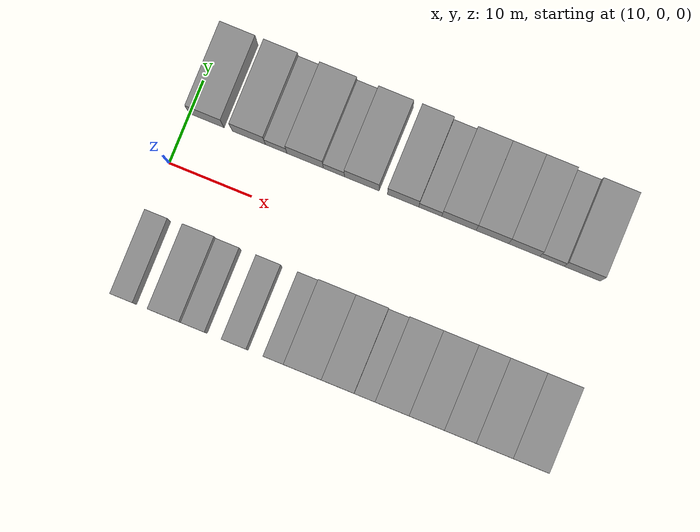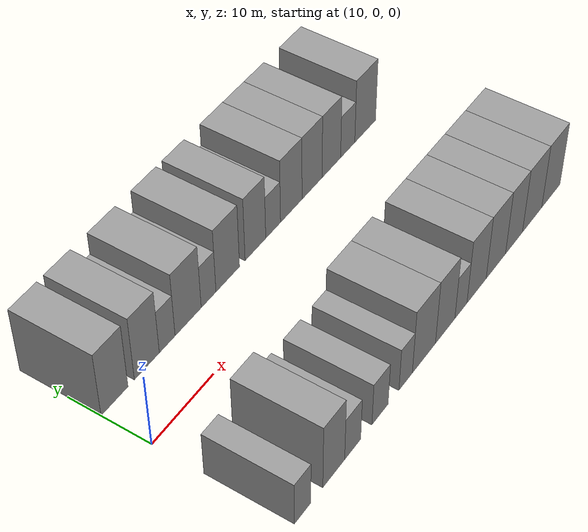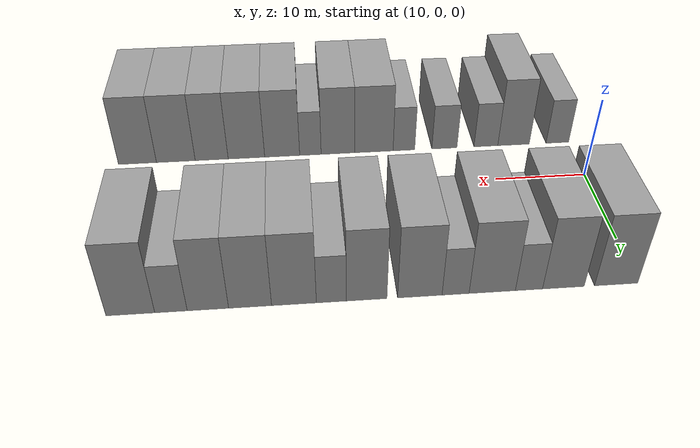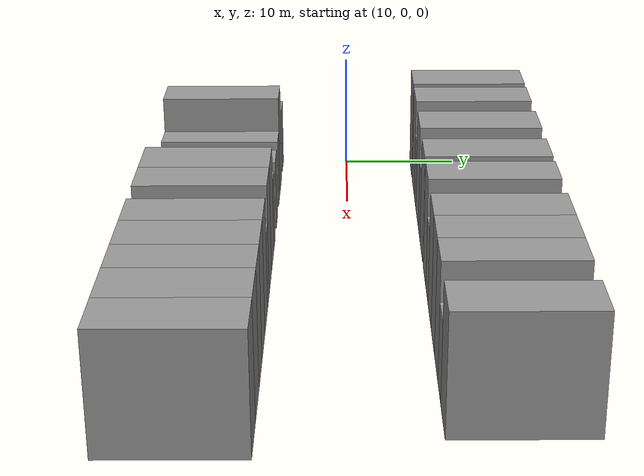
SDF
<sdf version="1.6">
 <world name="default">
  <model name="building_1">
   <static>1</static>
   <pose>12.0894 11.0000 0 0.000000 0.000000 1.570796</pose>
   <link name="link">
    <pose>0 0 4.50 0 0 0</pose>
    <collision name="collision"><geometry><box><size>10.0000 4.1788 9.0000</size></box></geometry></collision>
    <visual name="visual">
     <cast_shadows>0</cast_shadows>
     <geometry><box><size>10.0000 4.1788 9.0000</size></box></geometry>
     <material>
      <script>
       <uri>model://grey_wall/materials/scripts</uri>
       <uri>model://grey_wall/materials/textures</uri>
       <name>vrc/grey_wall</name>
      </script>
     </material>
    </visual>
   </link>
  </model>
  <model name="building_2">
   <static>1</static>
   <pose>17.1828 11.0000 0 0.000000 0.000000 1.570796</pose>
   <link name="link">
    <pose>0 0 4.50 0 0 0</pose>
    <collision name="collision"><geometry><box><size>10.0000 4.0079 9.0000</size></box></geometry></collision>
    <visual name="visual">
     <cast_shadows>0</cast_shadows>
     <geometry><box><size>10.0000 4.0079 9.0000</size></box></geometry>
     <material>
      <script>
       <uri>model://grey_wall/materials/scripts</uri>
       <uri>model://grey_wall/materials/textures</uri>
       <name>vrc/grey_wall</name>
      </script>
     </material>
    </visual>
   </link>
  </model>
  <model name="building_3">
   <static>1</static>
   <pose>20.4852 11.0000 0 0.000000 0.000000 1.570796</pose>
   <link name="link">
    <pose>0 0 3.00 0 0 0</pose>
    <collision name="collision"><geometry><box><size>10.0000 2.5969 6.0000</size></box></geometry></collision>
    <visual name="visual">
     <cast_shadows>0</cast_shadows>
     <geometry><box><size>10.0000 2.5969 6.0000</size></box></geometry>
     <material>
      <script>
       <uri>model://grey_wall/materials/scripts</uri>
       <uri>model://grey_wall/materials/textures</uri>
       <name>vrc/grey_wall</name>
      </script>
     </material>
    </visual>
   </link>
  </model>
  <model name="building_4">
   <static>1</static>
   <pose>23.9830 11.0000 0 0.000000 0.000000 1.570796</pose>
   <link name="link">
    <pose>0 0 4.50 0 0 0</pose>
    <collision name="collision"><geometry><box><size>10.0000 4.3987 9.0000</size></box></geometry></collision>
    <visual name="visual">
     <cast_shadows>0</cast_shadows>
     <geometry><box><size>10.0000 4.3987 9.0000</size></box></geometry>
     <material>
      <script>
       <uri>model://grey_wall/materials/scripts</uri>
       <uri>model://grey_wall/materials/textures</uri>
       <name>vrc/grey_wall</name>
      </script>
     </material>
    </visual>
   </link>
  </model>
  <model name="building_5">
   <static>1</static>
   <pose>27.4589 11.0000 0 0.000000 0.000000 1.570796</pose>
   <link name="link">
    <pose>0 0 3.00 0 0 0</pose>
    <collision name="collision"><geometry><box><size>10.0000 2.5531 6.0000</size></box></geometry></collision>
    <visual name="visual">
     <cast_shadows>0</cast_shadows>
     <geometry><box><size>10.0000 2.5531 6.0000</size></box></geometry>
     <material>
      <script>
       <uri>model://grey_wall/materials/scripts</uri>
       <uri>model://grey_wall/materials/textures</uri>
       <name>vrc/grey_wall</name>
      </script>
     </material>
    </visual>
   </link>
  </model>
  <model name="building_6">
   <static>1</static>
   <pose>30.8205 11.0000 0 0.000000 0.000000 1.570796</pose>
   <link name="link">
    <pose>0 0 4.50 0 0 0</pose>
    <collision name="collision"><geometry><box><size>10.0000 4.1700 9.0000</size></box></geometry></collision>
    <visual name="visual">
     <cast_shadows>0</cast_shadows>
     <geometry><box><size>10.0000 4.1700 9.0000</size></box></geometry>
     <material>
      <script>
       <uri>model://grey_wall/materials/scripts</uri>
       <uri>model://grey_wall/materials/textures</uri>
       <name>vrc/grey_wall</name>
      </script>
     </material>
    </visual>
   </link>
  </model>
  <model name="building_7">
   <static>1</static>
   <pose>35.7964 11.0000 0 0.000000 0.000000 1.570796</pose>
   <link name="link">
    <pose>0 0 4.50 0 0 0</pose>
    <collision name="collision"><geometry><box><size>10.0000 3.7817 9.0000</size></box></geometry></collision>
    <visual name="visual">
     <cast_shadows>0</cast_shadows>
     <geometry><box><size>10.0000 3.7817 9.0000</size></box></geometry>
     <material>
      <script>
       <uri>model://grey_wall/materials/scripts</uri>
       <uri>model://grey_wall/materials/textures</uri>
       <name>vrc/grey_wall</name>
      </script>
     </material>
    </visual>
   </link>
  </model>
  <model name="building_8">
   <static>1</static>
   <pose>39.0722 11.0000 0 0.000000 0.000000 1.570796</pose>
   <link name="link">
    <pose>0 0 3.00 0 0 0</pose>
    <collision name="collision"><geometry><box><size>10.0000 2.7698 6.0000</size></box></geometry></collision>
    <visual name="visual">
     <cast_shadows>0</cast_shadows>
     <geometry><box><size>10.0000 2.7698 6.0000</size></box></geometry>
     <material>
      <script>
       <uri>model://grey_wall/materials/scripts</uri>
       <uri>model://grey_wall/materials/textures</uri>
       <name>vrc/grey_wall</name>
      </script>
     </material>
    </visual>
   </link>
  </model>
  <model name="building_9">
   <static>1</static>
   <pose>42.5148 11.0000 0 0.000000 0.000000 1.570796</pose>
   <link name="link">
    <pose>0 0 4.50 0 0 0</pose>
    <collision name="collision"><geometry><box><size>10.0000 4.1155 9.0000</size></box></geometry></collision>
    <visual name="visual">
     <cast_shadows>0</cast_shadows>
     <geometry><box><size>10.0000 4.1155 9.0000</size></box></geometry>
     <material>
      <script>
       <uri>model://grey_wall/materials/scripts</uri>
       <uri>model://grey_wall/materials/textures</uri>
       <name>vrc/grey_wall</name>
      </script>
     </material>
    </visual>
   </link>
  </model>
  <model name="building_10">
   <static>1</static>
   <pose>46.5378 11.0000 0 0.000000 0.000000 1.570796</pose>
   <link name="link">
    <pose>0 0 4.50 0 0 0</pose>
    <collision name="collision"><geometry><box><size>10.0000 3.9304 9.0000</size></box></geometry></collision>
    <visual name="visual">
     <cast_shadows>0</cast_shadows>
     <geometry><box><size>10.0000 3.9304 9.0000</size></box></geometry>
     <material>
      <script>
       <uri>model://grey_wall/materials/scripts</uri>
       <uri>model://grey_wall/materials/textures</uri>
       <name>vrc/grey_wall</name>
      </script>
     </material>
    </visual>
   </link>
  </model>
  <model name="building_11">
   <static>1</static>
   <pose>50.3822 11.0000 0 0.000000 0.000000 1.570796</pose>
   <link name="link">
    <pose>0 0 4.50 0 0 0</pose>
    <collision name="collision"><geometry><box><size>10.0000 3.7583 9.0000</size></box></geometry></collision>
    <visual name="visual">
     <cast_shadows>0</cast_shadows>
     <geometry><box><size>10.0000 3.7583 9.0000</size></box></geometry>
     <material>
      <script>
       <uri>model://grey_wall/materials/scripts</uri>
       <uri>model://grey_wall/materials/textures</uri>
       <name>vrc/grey_wall</name>
      </script>
     </material>
    </visual>
   </link>
  </model>
  <model name="building_12">
   <static>1</static>
   <pose>53.7239 11.0000 0 0.000000 0.000000 1.570796</pose>
   <link name="link">
    <pose>0 0 3.00 0 0 0</pose>
    <collision name="collision"><geometry><box><size>10.0000 2.9252 6.0000</size></box></geometry></collision>
    <visual name="visual">
     <cast_shadows>0</cast_shadows>
     <geometry><box><size>10.0000 2.9252 6.0000</size></box></geometry>
     <material>
      <script>
       <uri>model://grey_wall/materials/scripts</uri>
       <uri>model://grey_wall/materials/textures</uri>
       <name>vrc/grey_wall</name>
      </script>
     </material>
    </visual>
   </link>
  </model>
  <model name="building_13">
   <static>1</static>
   <pose>57.3738 11.0000 0 0.000000 0.000000 1.570796</pose>
   <link name="link">
    <pose>0 0 4.50 0 0 0</pose>
    <collision name="collision"><geometry><box><size>10.0000 4.3746 9.0000</size></box></geometry></collision>
    <visual name="visual">
     <cast_shadows>0</cast_shadows>
     <geometry><box><size>10.0000 4.3746 9.0000</size></box></geometry>
     <material>
      <script>
       <uri>model://grey_wall/materials/scripts</uri>
       <uri>model://grey_wall/materials/textures</uri>
       <name>vrc/grey_wall</name>
      </script>
     </material>
    </visual>
   </link>
  </model>
  <model name="building_53">
   <static>1</static>
   <pose>11.3415 -11.0000 0 0.000000 0.000000 1.570796</pose>
   <link name="link">
    <pose>0 0 3.00 0 0 0</pose>
    <collision name="collision"><geometry><box><size>10.0000 2.6829 6.0000</size></box></geometry></collision>
    <visual name="visual">
     <cast_shadows>0</cast_shadows>
     <geometry><box><size>10.0000 2.6829 6.0000</size></box></geometry>
     <material>
      <script>
       <uri>model://grey_wall/materials/scripts</uri>
       <uri>model://grey_wall/materials/textures</uri>
       <name>vrc/grey_wall</name>
      </script>
     </material>
    </visual>
   </link>
  </model>
  <model name="building_54">
   <static>1</static>
   <pose>16.5427 -11.0000 0 0.000000 0.000000 1.570796</pose>
   <link name="link">
    <pose>0 0 4.50 0 0 0</pose>
    <collision name="collision"><geometry><box><size>10.0000 3.7194 9.0000</size></box></geometry></collision>
    <visual name="visual">
     <cast_shadows>0</cast_shadows>
     <geometry><box><size>10.0000 3.7194 9.0000</size></box></geometry>
     <material>
      <script>
       <uri>model://grey_wall/materials/scripts</uri>
       <uri>model://grey_wall/materials/textures</uri>
       <name>vrc/grey_wall</name>
      </script>
     </material>
    </visual>
   </link>
  </model>
  <model name="building_55">
   <static>1</static>
   <pose>19.8038 -11.0000 0 0.000000 0.000000 1.570796</pose>
   <link name="link">
    <pose>0 0 3.00 0 0 0</pose>
    <collision name="collision"><geometry><box><size>10.0000 2.8029 6.0000</size></box></geometry></collision>
    <visual name="visual">
     <cast_shadows>0</cast_shadows>
     <geometry><box><size>10.0000 2.8029 6.0000</size></box></geometry>
     <material>
      <script>
       <uri>model://grey_wall/materials/scripts</uri>
       <uri>model://grey_wall/materials/textures</uri>
       <name>vrc/grey_wall</name>
      </script>
     </material>
    </visual>
   </link>
  </model>
  <model name="building_56">
   <static>1</static>
   <pose>24.6701 -11.0000 0 0.000000 0.000000 1.570796</pose>
   <link name="link">
    <pose>0 0 3.00 0 0 0</pose>
    <collision name="collision"><geometry><box><size>10.0000 2.9298 6.0000</size></box></geometry></collision>
    <visual name="visual">
     <cast_shadows>0</cast_shadows>
     <geometry><box><size>10.0000 2.9298 6.0000</size></box></geometry>
     <material>
      <script>
       <uri>model://grey_wall/materials/scripts</uri>
       <uri>model://grey_wall/materials/textures</uri>
       <name>vrc/grey_wall</name>
      </script>
     </material>
    </visual>
   </link>
  </model>
  <model name="building_57">
   <static>1</static>
   <pose>29.3902 -11.0000 0 0.000000 0.000000 1.570796</pose>
   <link name="link">
    <pose>0 0 3.00 0 0 0</pose>
    <collision name="collision"><geometry><box><size>10.0000 2.5104 6.0000</size></box></geometry></collision>
    <visual name="visual">
     <cast_shadows>0</cast_shadows>
     <geometry><box><size>10.0000 2.5104 6.0000</size></box></geometry>
     <material>
      <script>
       <uri>model://grey_wall/materials/scripts</uri>
       <uri>model://grey_wall/materials/textures</uri>
       <name>vrc/grey_wall</name>
      </script>
     </material>
    </visual>
   </link>
  </model>
  <model name="building_58">
   <static>1</static>
   <pose>32.8690 -11.0000 0 0.000000 0.000000 1.570796</pose>
   <link name="link">
    <pose>0 0 4.50 0 0 0</pose>
    <collision name="collision"><geometry><box><size>10.0000 4.4471 9.0000</size></box></geometry></collision>
    <visual name="visual">
     <cast_shadows>0</cast_shadows>
     <geometry><box><size>10.0000 4.4471 9.0000</size></box></geometry>
     <material>
      <script>
       <uri>model://grey_wall/materials/scripts</uri>
       <uri>model://grey_wall/materials/textures</uri>
       <name>vrc/grey_wall</name>
      </script>
     </material>
    </visual>
   </link>
  </model>
  <model name="building_59">
   <static>1</static>
   <pose>37.0148 -11.0000 0 0.000000 0.000000 1.570796</pose>
   <link name="link">
    <pose>0 0 4.50 0 0 0</pose>
    <collision name="collision"><geometry><box><size>10.0000 3.8444 9.0000</size></box></geometry></collision>
    <visual name="visual">
     <cast_shadows>0</cast_shadows>
     <geometry><box><size>10.0000 3.8444 9.0000</size></box></geometry>
     <material>
      <script>
       <uri>model://grey_wall/materials/scripts</uri>
       <uri>model://grey_wall/materials/textures</uri>
       <name>vrc/grey_wall</name>
      </script>
     </material>
    </visual>
   </link>
  </model>
  <model name="building_60">
   <static>1</static>
   <pose>40.1631 -11.0000 0 0.000000 0.000000 1.570796</pose>
   <link name="link">
    <pose>0 0 3.00 0 0 0</pose>
    <collision name="collision"><geometry><box><size>10.0000 2.4523 6.0000</size></box></geometry></collision>
    <visual name="visual">
     <cast_shadows>0</cast_shadows>
     <geometry><box><size>10.0000 2.4523 6.0000</size></box></geometry>
     <material>
      <script>
       <uri>model://grey_wall/materials/scripts</uri>
       <uri>model://grey_wall/materials/textures</uri>
       <name>vrc/grey_wall</name>
      </script>
     </material>
    </visual>
   </link>
  </model>
  <model name="building_61">
   <static>1</static>
   <pose>43.3816 -11.0000 0 0.000000 0.000000 1.570796</pose>
   <link name="link">
    <pose>0 0 4.50 0 0 0</pose>
    <collision name="collision"><geometry><box><size>10.0000 3.9846 9.0000</size></box></geometry></collision>
    <visual name="visual">
     <cast_shadows>0</cast_shadows>
     <geometry><box><size>10.0000 3.9846 9.0000</size></box></geometry>
     <material>
      <script>
       <uri>model://grey_wall/materials/scripts</uri>
       <uri>model://grey_wall/materials/textures</uri>
       <name>vrc/grey_wall</name>
      </script>
     </material>
    </visual>
   </link>
  </model>
  <model name="building_62">
   <static>1</static>
   <pose>47.4419 -11.0000 0 0.000000 0.000000 1.570796</pose>
   <link name="link">
    <pose>0 0 4.50 0 0 0</pose>
    <collision name="collision"><geometry><box><size>10.0000 4.1360 9.0000</size></box></geometry></collision>
    <visual name="visual">
     <cast_shadows>0</cast_shadows>
     <geometry><box><size>10.0000 4.1360 9.0000</size></box></geometry>
     <material>
      <script>
       <uri>model://grey_wall/materials/scripts</uri>
       <uri>model://grey_wall/materials/textures</uri>
       <name>vrc/grey_wall</name>
      </script>
     </material>
    </visual>
   </link>
  </model>
  <model name="building_63">
   <static>1</static>
   <pose>51.3653 -11.0000 0 0.000000 0.000000 1.570796</pose>
   <link name="link">
    <pose>0 0 4.50 0 0 0</pose>
    <collision name="collision"><geometry><box><size>10.0000 3.7106 9.0000</size></box></geometry></collision>
    <visual name="visual">
     <cast_shadows>0</cast_shadows>
     <geometry><box><size>10.0000 3.7106 9.0000</size></box></geometry>
     <material>
      <script>
       <uri>model://grey_wall/materials/scripts</uri>
       <uri>model://grey_wall/materials/textures</uri>
       <name>vrc/grey_wall</name>
      </script>
     </material>
    </visual>
   </link>
  </model>
  <model name="building_64">
   <static>1</static>
   <pose>55.3886 -11.0000 0 0.000000 0.000000 1.570796</pose>
   <link name="link">
    <pose>0 0 4.50 0 0 0</pose>
    <collision name="collision"><geometry><box><size>10.0000 4.3359 9.0000</size></box></geometry></collision>
    <visual name="visual">
     <cast_shadows>0</cast_shadows>
     <geometry><box><size>10.0000 4.3359 9.0000</size></box></geometry>
     <material>
      <script>
       <uri>model://grey_wall/materials/scripts</uri>
       <uri>model://grey_wall/materials/textures</uri>
       <name>vrc/grey_wall</name>
      </script>
     </material>
    </visual>
   </link>
  </model>
  <model name="building_65">
   <static>1</static>
   <pose>59.6733 -11.0000 0 0.000000 0.000000 1.570796</pose>
   <link name="link">
    <pose>0 0 4.50 0 0 0</pose>
    <collision name="collision"><geometry><box><size>10.0000 4.2336 9.0000</size></box></geometry></collision>
    <visual name="visual">
     <cast_shadows>0</cast_shadows>
     <geometry><box><size>10.0000 4.2336 9.0000</size></box></geometry>
     <material>
      <script>
       <uri>model://grey_wall/materials/scripts</uri>
       <uri>model://grey_wall/materials/textures</uri>
       <name>vrc/grey_wall</name>
      </script>
     </material>
    </visual>
   </link>
  </model>
 </world>
</sdf>
